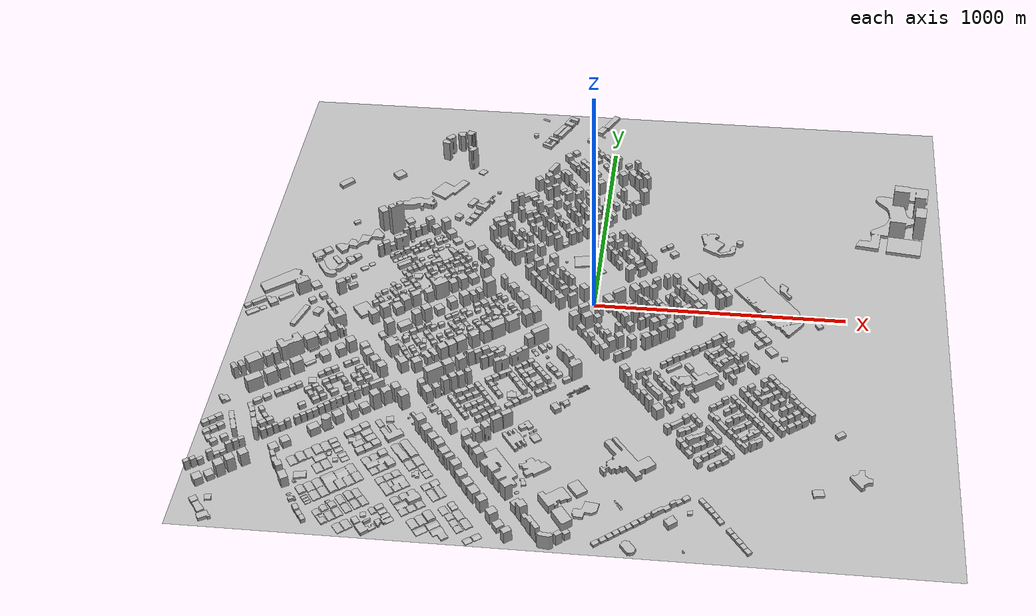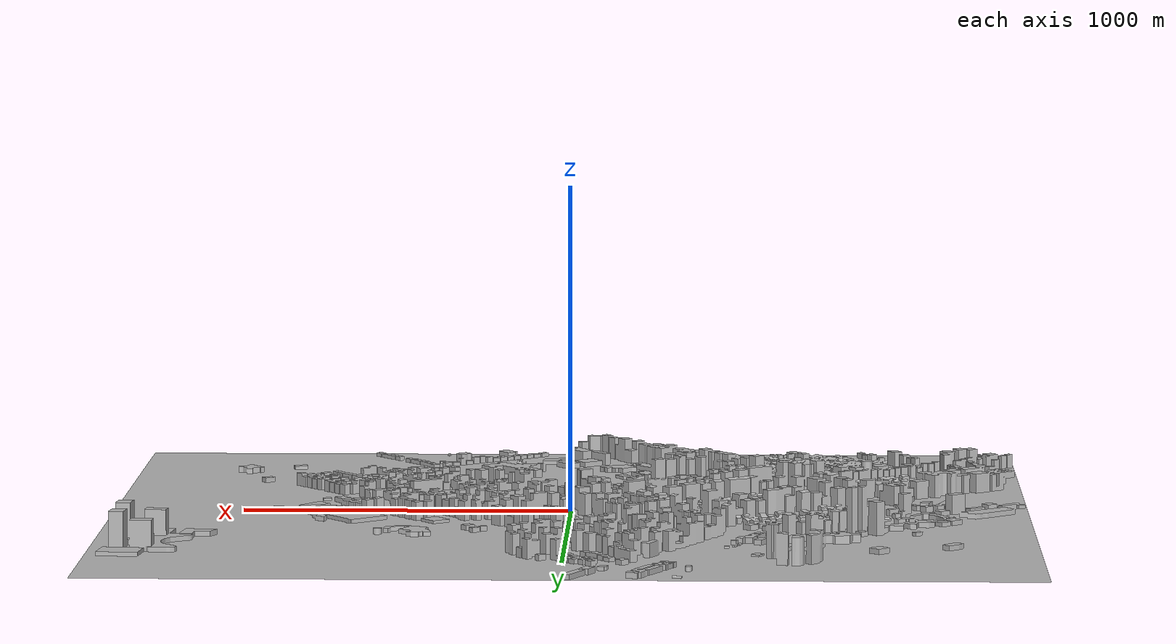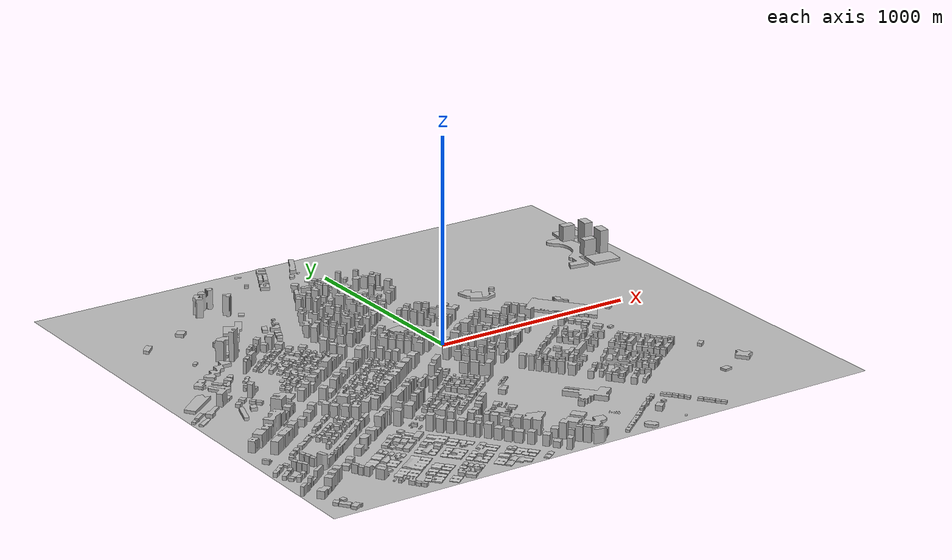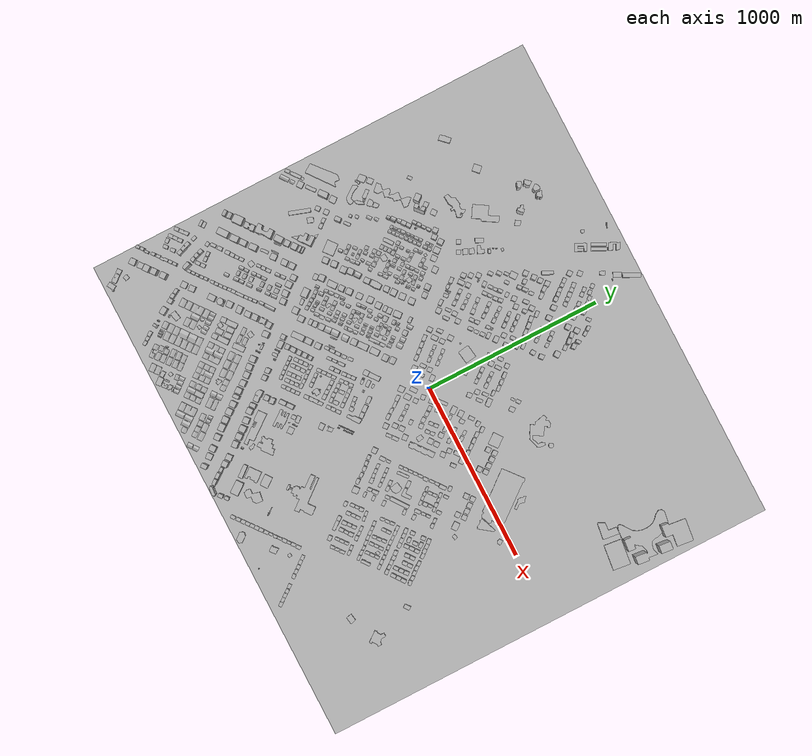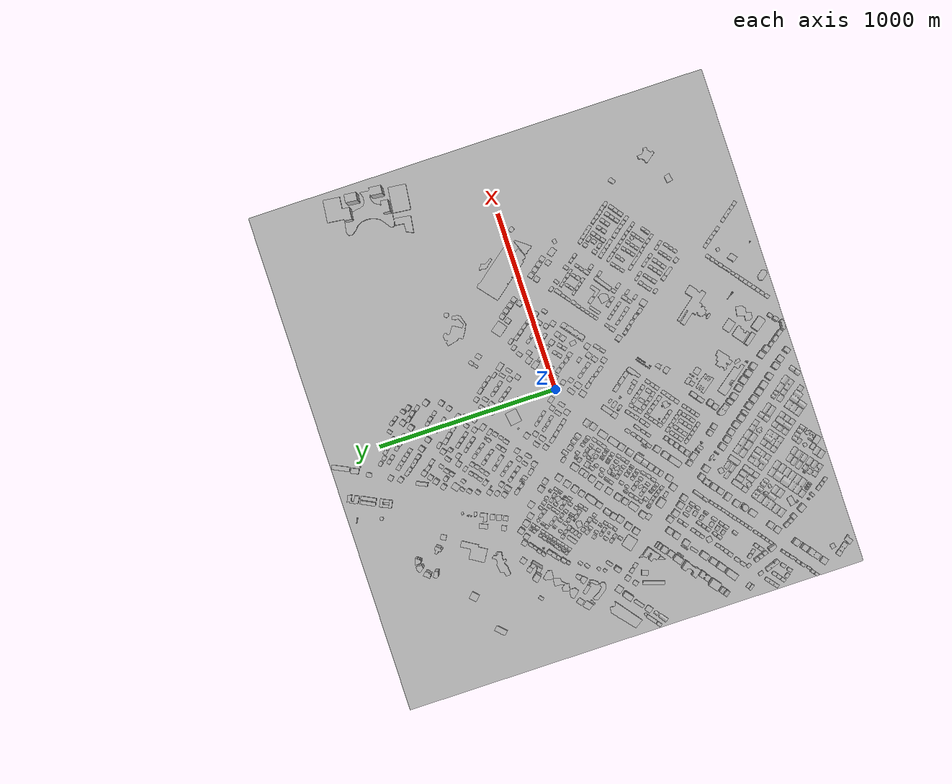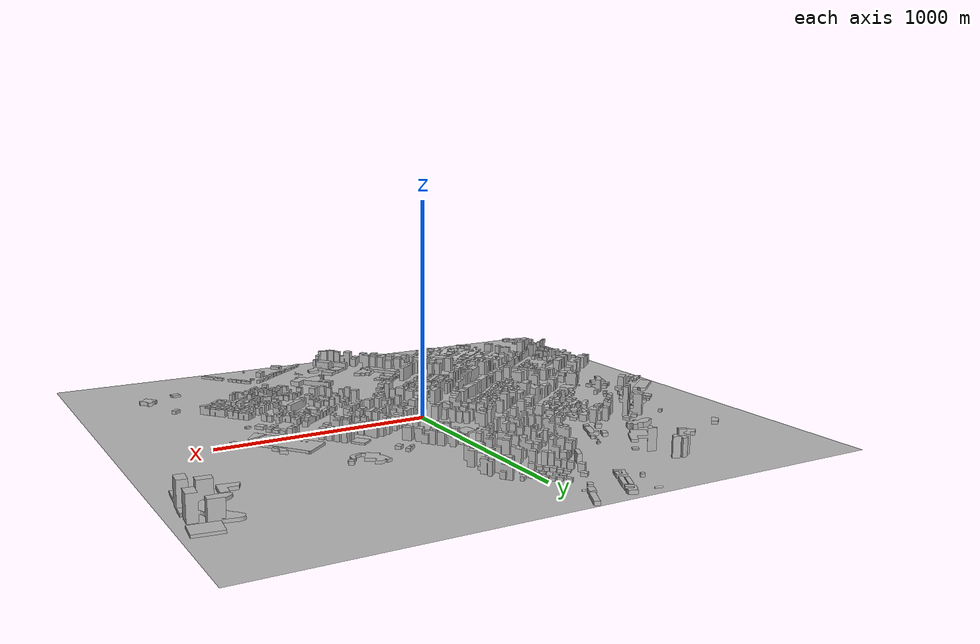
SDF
<?xml version="1.0" ?>
<sdf version="1.5">
  <model name="abu_dhabi_model">
    <pose>0 0 0 0 0 0</pose>
    <static>true</static>
    <link name="terrain">
      <visual name="visual">
        <geometry>
          <mesh><uri>model://abu_dhabi_model/media/terrain.dae</uri></mesh>
        </geometry>
        <pose>0 0 -3.5 0 0 0</pose>
      </visual>
      <collision name="collision">
        <geometry>
          <mesh><uri>model://abu_dhabi_model/media/terrain.dae</uri></mesh>
        </geometry>
        <pose>0 0 -3.5 0 0 0</pose>
      </collision>
    </link>

    <link name="buildings">
      <visual name="visual">
        <geometry>
          <mesh><uri>model://abu_dhabi_model/media/buildings.dae</uri></mesh>
        </geometry>
        <pose>0 0 -3.5 0 0 0</pose>
      </visual>
      <collision name="collision">
        <geometry>
          <mesh><uri>model://abu_dhabi_model/media/buildings.dae</uri></mesh>
        </geometry>
        <pose>0 0 -3.5 0 0 0</pose>
      </collision>
    </link>
  </model>
</sdf>
